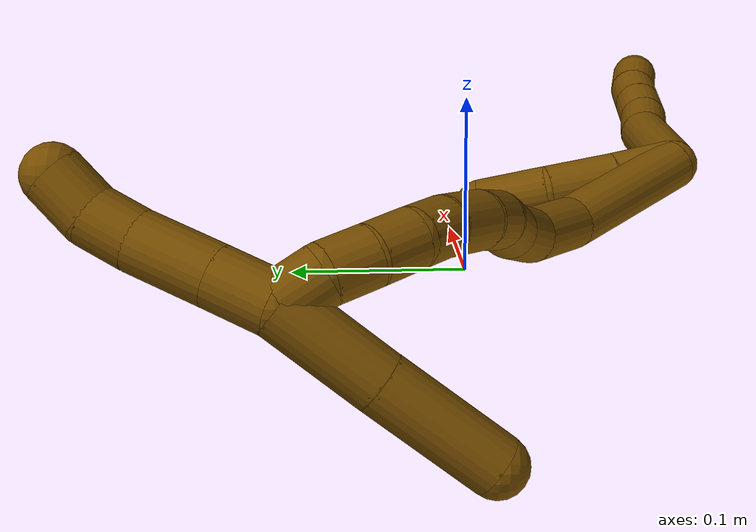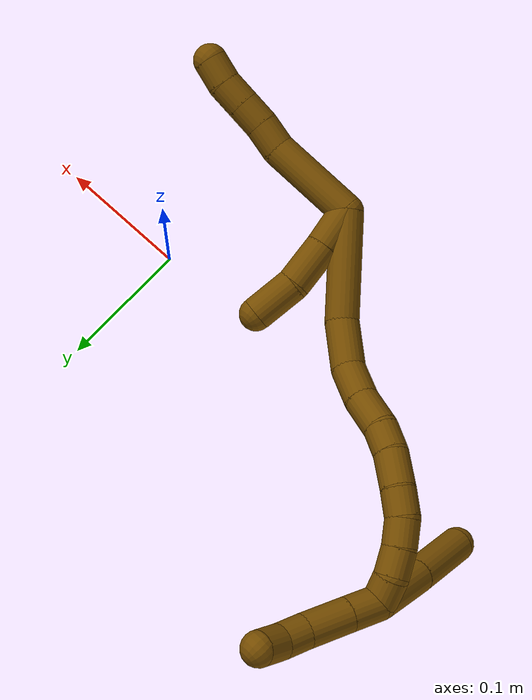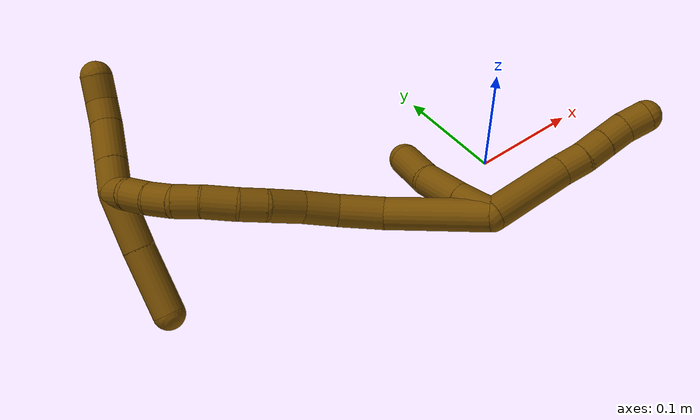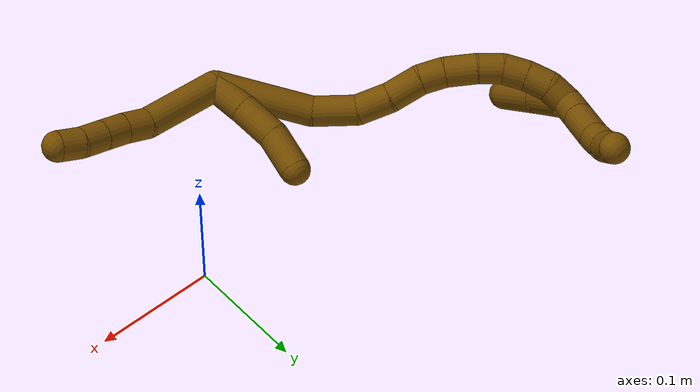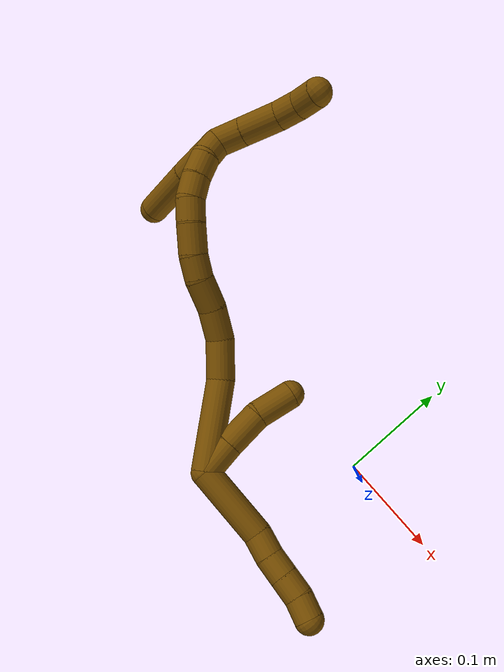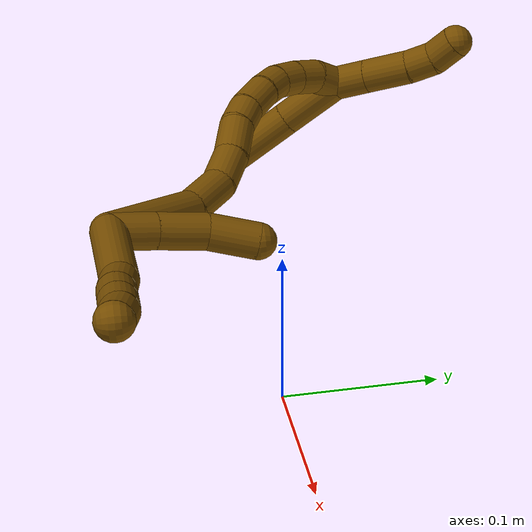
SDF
<sdf version="1.7">
 <world name="default">
  <model name="12">
   <static>0</static>
   <link name="12">
    <collision name="collision-cylinder-e_1_2_8">
     <pose>0.033902 0.003251 0.001426 -1.15732 1.46646 -1.06372</pose>
     <geometry><cylinder><radius>0.0125</radius><length>0.068174</length></cylinder></geometry>
     <surface>
      <friction><ode><mu>1.16</mu><mu2>1.16</mu2><slip1>0</slip1><slip2>0</slip2></ode></friction>
      <contact><ode><kp>1e+06</kp><kd>1</kd><max_vel>0</max_vel><min_depth>0.001</min_depth></ode></contact>
     </surface>
    </collision>
    <visual name="visual-cylinder-e_1_2_8">
     <pose>0.033902 0.003251 0.001426 -1.15732 1.46646 -1.06372</pose>
     <geometry><cylinder><radius>0.0125</radius><length>0.068174</length></cylinder></geometry>
     <material><ambient>0.466667 0.301961 0 1</ambient></material>
    </visual>
    <collision name="collision-cylinder-e_2_8_9">
     <pose>0.078367 0.00539 0.001528 2.44361 1.40849 2.33224</pose>
     <geometry><cylinder><radius>0.0125</radius><length>0.021408</length></cylinder></geometry>
     <surface>
      <friction><ode><mu>1.16</mu><mu2>1.16</mu2><slip1>0</slip1><slip2>0</slip2></ode></friction>
      <contact><ode><kp>1e+06</kp><kd>1</kd><max_vel>0</max_vel><min_depth>0.001</min_depth></ode></contact>
     </surface>
    </collision>
    <visual name="visual-cylinder-e_2_8_9">
     <pose>0.078367 0.00539 0.001528 2.44361 1.40849 2.33224</pose>
     <geometry><cylinder><radius>0.0125</radius><length>0.021408</length></cylinder></geometry>
     <material><ambient>0.466667 0.301961 0 1</ambient></material>
    </visual>
    <collision name="collision-cylinder-e_3_9_10">
     <pose>0.098882 0.003227 0.000271 1.50629 1.46523 1.4013</pose>
     <geometry><cylinder><radius>0.0125</radius><length>0.020014</length></cylinder></geometry>
     <surface>
      <friction><ode><mu>1.16</mu><mu2>1.16</mu2><slip1>0</slip1><slip2>0</slip2></ode></friction>
      <contact><ode><kp>1e+06</kp><kd>1</kd><max_vel>0</max_vel><min_depth>0.001</min_depth></ode></contact>
     </surface>
    </collision>
    <visual name="visual-cylinder-e_3_9_10">
     <pose>0.098882 0.003227 0.000271 1.50629 1.46523 1.4013</pose>
     <geometry><cylinder><radius>0.0125</radius><length>0.020014</length></cylinder></geometry>
     <material><ambient>0.466667 0.301961 0 1</ambient></material>
    </visual>
    <collision name="collision-cylinder-e_4_10_11">
     <pose>0.11897 0.001155 0.000401 1.50933 1.4704 1.40943</pose>
     <geometry><cylinder><radius>0.0125</radius><length>0.020376</length></cylinder></geometry>
     <surface>
      <friction><ode><mu>1.16</mu><mu2>1.16</mu2><slip1>0</slip1><slip2>0</slip2></ode></friction>
      <contact><ode><kp>1e+06</kp><kd>1</kd><max_vel>0</max_vel><min_depth>0.001</min_depth></ode></contact>
     </surface>
    </collision>
    <visual name="visual-cylinder-e_4_10_11">
     <pose>0.11897 0.001155 0.000401 1.50933 1.4704 1.40943</pose>
     <geometry><cylinder><radius>0.0125</radius><length>0.020376</length></cylinder></geometry>
     <material><ambient>0.466667 0.301961 0 1</ambient></material>
    </visual>
    <collision name="collision-cylinder-e_5_11_6">
     <pose>0.138858 -0.001268 -0.001329 2.47743 1.34136 2.32152</pose>
     <geometry><cylinder><radius>0.0125</radius><length>0.020028</length></cylinder></geometry>
     <surface>
      <friction><ode><mu>1.16</mu><mu2>1.16</mu2><slip1>0</slip1><slip2>0</slip2></ode></friction>
      <contact><ode><kp>1e+06</kp><kd>1</kd><max_vel>0</max_vel><min_depth>0.001</min_depth></ode></contact>
     </surface>
    </collision>
    <visual name="visual-cylinder-e_5_11_6">
     <pose>0.138858 -0.001268 -0.001329 2.47743 1.34136 2.32152</pose>
     <geometry><cylinder><radius>0.0125</radius><length>0.020028</length></cylinder></geometry>
     <material><ambient>0.466667 0.301961 0 1</ambient></material>
    </visual>
    <collision name="collision-cylinder-e_1_2_12">
     <pose>-0.003405 0.002839 0.014876 -0.188559 -0.221155 0.020997</pose>
     <geometry><cylinder><radius>0.0125</radius><length>0.031045</length></cylinder></geometry>
     <surface>
      <friction><ode><mu>1.16</mu><mu2>1.16</mu2><slip1>0</slip1><slip2>0</slip2></ode></friction>
      <contact><ode><kp>1e+06</kp><kd>1</kd><max_vel>0</max_vel><min_depth>0.001</min_depth></ode></contact>
     </surface>
    </collision>
    <visual name="visual-cylinder-e_1_2_12">
     <pose>-0.003405 0.002839 0.014876 -0.188559 -0.221155 0.020997</pose>
     <geometry><cylinder><radius>0.0125</radius><length>0.031045</length></cylinder></geometry>
     <material><ambient>0.466667 0.301961 0 1</ambient></material>
    </visual>
    <collision name="collision-cylinder-e_2_12_13">
     <pose>-0.009596 0.008813 0.046559 -0.184459 -0.161529 0.014972</pose>
     <geometry><cylinder><radius>0.0125</radius><length>0.034646</length></cylinder></geometry>
     <surface>
      <friction><ode><mu>1.16</mu><mu2>1.16</mu2><slip1>0</slip1><slip2>0</slip2></ode></friction>
      <contact><ode><kp>1e+06</kp><kd>1</kd><max_vel>0</max_vel><min_depth>0.001</min_depth></ode></contact>
     </surface>
    </collision>
    <visual name="visual-cylinder-e_2_12_13">
     <pose>-0.009596 0.008813 0.046559 -0.184459 -0.161529 0.014972</pose>
     <geometry><cylinder><radius>0.0125</radius><length>0.034646</length></cylinder></geometry>
     <material><ambient>0.466667 0.301961 0 1</ambient></material>
    </visual>
    <collision name="collision-cylinder-e_3_13_5">
     <pose>-0.011036 0.016727 0.079788 -0.283122 0.078508 -0.011194</pose>
     <geometry><cylinder><radius>0.0125</radius><length>0.034309</length></cylinder></geometry>
     <surface>
      <friction><ode><mu>1.16</mu><mu2>1.16</mu2><slip1>0</slip1><slip2>0</slip2></ode></friction>
      <contact><ode><kp>1e+06</kp><kd>1</kd><max_vel>0</max_vel><min_depth>0.001</min_depth></ode></contact>
     </surface>
    </collision>
    <visual name="visual-cylinder-e_3_13_5">
     <pose>-0.011036 0.016727 0.079788 -0.283122 0.078508 -0.011194</pose>
     <geometry><cylinder><radius>0.0125</radius><length>0.034309</length></cylinder></geometry>
     <material><ambient>0.466667 0.301961 0 1</ambient></material>
    </visual>
    <collision name="collision-cylinder-e_1_2_14">
     <pose>-0.028063 0.005483 0.028323 -0.191233 -0.7716 0.077868</pose>
     <geometry><cylinder><radius>0.0125</radius><length>0.080494</length></cylinder></geometry>
     <surface>
      <friction><ode><mu>1.16</mu><mu2>1.16</mu2><slip1>0</slip1><slip2>0</slip2></ode></friction>
      <contact><ode><kp>1e+06</kp><kd>1</kd><max_vel>0</max_vel><min_depth>0.001</min_depth></ode></contact>
     </surface>
    </collision>
    <visual name="visual-cylinder-e_1_2_14">
     <pose>-0.028063 0.005483 0.028323 -0.191233 -0.7716 0.077868</pose>
     <geometry><cylinder><radius>0.0125</radius><length>0.080494</length></cylinder></geometry>
     <material><ambient>0.466667 0.301961 0 1</ambient></material>
    </visual>
    <collision name="collision-cylinder-e_2_14_15">
     <pose>-0.070284 0.008653 0.067705 0.206219 -0.897198 -0.09953</pose>
     <geometry><cylinder><radius>0.0125</radius><length>0.036226</length></cylinder></geometry>
     <surface>
      <friction><ode><mu>1.16</mu><mu2>1.16</mu2><slip1>0</slip1><slip2>0</slip2></ode></friction>
      <contact><ode><kp>1e+06</kp><kd>1</kd><max_vel>0</max_vel><min_depth>0.001</min_depth></ode></contact>
     </surface>
    </collision>
    <visual name="visual-cylinder-e_2_14_15">
     <pose>-0.070284 0.008653 0.067705 0.206219 -0.897198 -0.09953</pose>
     <geometry><cylinder><radius>0.0125</radius><length>0.036226</length></cylinder></geometry>
     <material><ambient>0.466667 0.301961 0 1</ambient></material>
    </visual>
    <collision name="collision-cylinder-e_3_15_16">
     <pose>-0.09585 0.000522 0.084691 0.776126 -0.941673 -0.410311</pose>
     <geometry><cylinder><radius>0.0125</radius><length>0.028223</length></cylinder></geometry>
     <surface>
      <friction><ode><mu>1.16</mu><mu2>1.16</mu2><slip1>0</slip1><slip2>0</slip2></ode></friction>
      <contact><ode><kp>1e+06</kp><kd>1</kd><max_vel>0</max_vel><min_depth>0.001</min_depth></ode></contact>
     </surface>
    </collision>
    <visual name="visual-cylinder-e_3_15_16">
     <pose>-0.09585 0.000522 0.084691 0.776126 -0.941673 -0.410311</pose>
     <geometry><cylinder><radius>0.0125</radius><length>0.028223</length></cylinder></geometry>
     <material><ambient>0.466667 0.301961 0 1</ambient></material>
    </visual>
    <collision name="collision-cylinder-e_4_16_17">
     <pose>-0.118852 -0.0123 0.094491 1.06562 -0.966389 -0.600118</pose>
     <geometry><cylinder><radius>0.0125</radius><length>0.028175</length></cylinder></geometry>
     <surface>
      <friction><ode><mu>1.16</mu><mu2>1.16</mu2><slip1>0</slip1><slip2>0</slip2></ode></friction>
      <contact><ode><kp>1e+06</kp><kd>1</kd><max_vel>0</max_vel><min_depth>0.001</min_depth></ode></contact>
     </surface>
    </collision>
    <visual name="visual-cylinder-e_4_16_17">
     <pose>-0.118852 -0.0123 0.094491 1.06562 -0.966389 -0.600118</pose>
     <geometry><cylinder><radius>0.0125</radius><length>0.028175</length></cylinder></geometry>
     <material><ambient>0.466667 0.301961 0 1</ambient></material>
    </visual>
    <collision name="collision-cylinder-e_5_17_18">
     <pose>-0.138985 -0.022626 0.102813 0.641136 -0.994551 -0.356594</pose>
     <geometry><cylinder><radius>0.0125</radius><length>0.020373</length></cylinder></geometry>
     <surface>
      <friction><ode><mu>1.16</mu><mu2>1.16</mu2><slip1>0</slip1><slip2>0</slip2></ode></friction>
      <contact><ode><kp>1e+06</kp><kd>1</kd><max_vel>0</max_vel><min_depth>0.001</min_depth></ode></contact>
     </surface>
    </collision>
    <visual name="visual-cylinder-e_5_17_18">
     <pose>-0.138985 -0.022626 0.102813 0.641136 -0.994551 -0.356594</pose>
     <geometry><cylinder><radius>0.0125</radius><length>0.020373</length></cylinder></geometry>
     <material><ambient>0.466667 0.301961 0 1</ambient></material>
    </visual>
    <collision name="collision-cylinder-e_6_18_19">
     <pose>-0.157934 -0.028603 0.114765 0.340453 -0.917844 -0.169457</pose>
     <geometry><cylinder><radius>0.0125</radius><length>0.026205</length></cylinder></geometry>
     <surface>
      <friction><ode><mu>1.16</mu><mu2>1.16</mu2><slip1>0</slip1><slip2>0</slip2></ode></friction>
      <contact><ode><kp>1e+06</kp><kd>1</kd><max_vel>0</max_vel><min_depth>0.001</min_depth></ode></contact>
     </surface>
    </collision>
    <visual name="visual-cylinder-e_6_18_19">
     <pose>-0.157934 -0.028603 0.114765 0.340453 -0.917844 -0.169457</pose>
     <geometry><cylinder><radius>0.0125</radius><length>0.026205</length></cylinder></geometry>
     <material><ambient>0.466667 0.301961 0 1</ambient></material>
    </visual>
    <collision name="collision-cylinder-e_7_19_20">
     <pose>-0.176472 -0.031957 0.128289 0.114991 -0.930182 -0.057751</pose>
     <geometry><cylinder><radius>0.0125</radius><length>0.020282</length></cylinder></geometry>
     <surface>
      <friction><ode><mu>1.16</mu><mu2>1.16</mu2><slip1>0</slip1><slip2>0</slip2></ode></friction>
      <contact><ode><kp>1e+06</kp><kd>1</kd><max_vel>0</max_vel><min_depth>0.001</min_depth></ode></contact>
     </surface>
    </collision>
    <visual name="visual-cylinder-e_7_19_20">
     <pose>-0.176472 -0.031957 0.128289 0.114991 -0.930182 -0.057751</pose>
     <geometry><cylinder><radius>0.0125</radius><length>0.020282</length></cylinder></geometry>
     <material><ambient>0.466667 0.301961 0 1</ambient></material>
    </visual>
    <collision name="collision-cylinder-e_8_20_21">
     <pose>-0.190971 -0.031649 0.141959 -0.130436 -0.690146 0.046944</pose>
     <geometry><cylinder><radius>0.0125</radius><length>0.020007</length></cylinder></geometry>
     <surface>
      <friction><ode><mu>1.16</mu><mu2>1.16</mu2><slip1>0</slip1><slip2>0</slip2></ode></friction>
      <contact><ode><kp>1e+06</kp><kd>1</kd><max_vel>0</max_vel><min_depth>0.001</min_depth></ode></contact>
     </surface>
    </collision>
    <visual name="visual-cylinder-e_8_20_21">
     <pose>-0.190971 -0.031649 0.141959 -0.130436 -0.690146 0.046944</pose>
     <geometry><cylinder><radius>0.0125</radius><length>0.020007</length></cylinder></geometry>
     <material><ambient>0.466667 0.301961 0 1</ambient></material>
    </visual>
    <collision name="collision-cylinder-e_9_21_22">
     <pose>-0.202476 -0.028813 0.157996 -0.215038 -0.539125 0.059625</pose>
     <geometry><cylinder><radius>0.0125</radius><length>0.020011</length></cylinder></geometry>
     <surface>
      <friction><ode><mu>1.16</mu><mu2>1.16</mu2><slip1>0</slip1><slip2>0</slip2></ode></friction>
      <contact><ode><kp>1e+06</kp><kd>1</kd><max_vel>0</max_vel><min_depth>0.001</min_depth></ode></contact>
     </surface>
    </collision>
    <visual name="visual-cylinder-e_9_21_22">
     <pose>-0.202476 -0.028813 0.157996 -0.215038 -0.539125 0.059625</pose>
     <geometry><cylinder><radius>0.0125</radius><length>0.020011</length></cylinder></geometry>
     <material><ambient>0.466667 0.301961 0 1</ambient></material>
    </visual>
    <collision name="collision-cylinder-e_10_22_1">
     <pose>-0.211293 -0.022325 0.174436 -0.524312 -0.376777 0.102225</pose>
     <geometry><cylinder><radius>0.0125</radius><length>0.020004</length></cylinder></geometry>
     <surface>
      <friction><ode><mu>1.16</mu><mu2>1.16</mu2><slip1>0</slip1><slip2>0</slip2></ode></friction>
      <contact><ode><kp>1e+06</kp><kd>1</kd><max_vel>0</max_vel><min_depth>0.001</min_depth></ode></contact>
     </surface>
    </collision>
    <visual name="visual-cylinder-e_10_22_1">
     <pose>-0.211293 -0.022325 0.174436 -0.524312 -0.376777 0.102225</pose>
     <geometry><cylinder><radius>0.0125</radius><length>0.020004</length></cylinder></geometry>
     <material><ambient>0.466667 0.301961 0 1</ambient></material>
    </visual>
    <collision name="collision-cylinder-e_1_1_23">
     <pose>-0.218428 -0.004685 0.163568 -2.54013 -0.149477 0.473804</pose>
     <geometry><cylinder><radius>0.0125</radius><length>0.046409</length></cylinder></geometry>
     <surface>
      <friction><ode><mu>1.16</mu><mu2>1.16</mu2><slip1>0</slip1><slip2>0</slip2></ode></friction>
      <contact><ode><kp>1e+06</kp><kd>1</kd><max_vel>0</max_vel><min_depth>0.001</min_depth></ode></contact>
     </surface>
    </collision>
    <visual name="visual-cylinder-e_1_1_23">
     <pose>-0.218428 -0.004685 0.163568 -2.54013 -0.149477 0.473804</pose>
     <geometry><cylinder><radius>0.0125</radius><length>0.046409</length></cylinder></geometry>
     <material><ambient>0.466667 0.301961 0 1</ambient></material>
    </visual>
    <collision name="collision-cylinder-e_2_23_4">
     <pose>-0.225007 0.023231 0.122621 -2.54586 -0.116802 0.376388</pose>
     <geometry><cylinder><radius>0.0125</radius><length>0.053591</length></cylinder></geometry>
     <surface>
      <friction><ode><mu>1.16</mu><mu2>1.16</mu2><slip1>0</slip1><slip2>0</slip2></ode></friction>
      <contact><ode><kp>1e+06</kp><kd>1</kd><max_vel>0</max_vel><min_depth>0.001</min_depth></ode></contact>
     </surface>
    </collision>
    <visual name="visual-cylinder-e_2_23_4">
     <pose>-0.225007 0.023231 0.122621 -2.54586 -0.116802 0.376388</pose>
     <geometry><cylinder><radius>0.0125</radius><length>0.053591</length></cylinder></geometry>
     <material><ambient>0.466667 0.301961 0 1</ambient></material>
    </visual>
    <collision name="collision-cylinder-e_1_1_24">
     <pose>-0.210208 -0.020692 0.194001 0.256736 0.380745 0.049738</pose>
     <geometry><cylinder><radius>0.0125</radius><length>0.025644</length></cylinder></geometry>
     <surface>
      <friction><ode><mu>1.16</mu><mu2>1.16</mu2><slip1>0</slip1><slip2>0</slip2></ode></friction>
      <contact><ode><kp>1e+06</kp><kd>1</kd><max_vel>0</max_vel><min_depth>0.001</min_depth></ode></contact>
     </surface>
    </collision>
    <visual name="visual-cylinder-e_1_1_24">
     <pose>-0.210208 -0.020692 0.194001 0.256736 0.380745 0.049738</pose>
     <geometry><cylinder><radius>0.0125</radius><length>0.025644</length></cylinder></geometry>
     <material><ambient>0.466667 0.301961 0 1</ambient></material>
    </visual>
    <collision name="collision-cylinder-e_2_24_25">
     <pose>-0.199252 -0.027595 0.220661 0.25079 0.377025 0.048088</pose>
     <geometry><cylinder><radius>0.0125</radius><length>0.033634</length></cylinder></geometry>
     <surface>
      <friction><ode><mu>1.16</mu><mu2>1.16</mu2><slip1>0</slip1><slip2>0</slip2></ode></friction>
      <contact><ode><kp>1e+06</kp><kd>1</kd><max_vel>0</max_vel><min_depth>0.001</min_depth></ode></contact>
     </surface>
    </collision>
    <visual name="visual-cylinder-e_2_24_25">
     <pose>-0.199252 -0.027595 0.220661 0.25079 0.377025 0.048088</pose>
     <geometry><cylinder><radius>0.0125</radius><length>0.033634</length></cylinder></geometry>
     <material><ambient>0.466667 0.301961 0 1</ambient></material>
    </visual>
    <collision name="collision-cylinder-e_3_25_26">
     <pose>-0.189799 -0.034884 0.244657 0.367748 0.331231 0.06215</pose>
     <geometry><cylinder><radius>0.0125</radius><length>0.020056</length></cylinder></geometry>
     <surface>
      <friction><ode><mu>1.16</mu><mu2>1.16</mu2><slip1>0</slip1><slip2>0</slip2></ode></friction>
      <contact><ode><kp>1e+06</kp><kd>1</kd><max_vel>0</max_vel><min_depth>0.001</min_depth></ode></contact>
     </surface>
    </collision>
    <visual name="visual-cylinder-e_3_25_26">
     <pose>-0.189799 -0.034884 0.244657 0.367748 0.331231 0.06215</pose>
     <geometry><cylinder><radius>0.0125</radius><length>0.020056</length></cylinder></geometry>
     <material><ambient>0.466667 0.301961 0 1</ambient></material>
    </visual>
    <collision name="collision-cylinder-e_4_26_3">
     <pose>-0.18313 -0.044617 0.260933 0.705344 0.336168 0.124746</pose>
     <geometry><cylinder><radius>0.0125</radius><length>0.020666</length></cylinder></geometry>
     <surface>
      <friction><ode><mu>1.16</mu><mu2>1.16</mu2><slip1>0</slip1><slip2>0</slip2></ode></friction>
      <contact><ode><kp>1e+06</kp><kd>1</kd><max_vel>0</max_vel><min_depth>0.001</min_depth></ode></contact>
     </surface>
    </collision>
    <visual name="visual-cylinder-e_4_26_3">
     <pose>-0.18313 -0.044617 0.260933 0.705344 0.336168 0.124746</pose>
     <geometry><cylinder><radius>0.0125</radius><length>0.020666</length></cylinder></geometry>
     <material><ambient>0.466667 0.301961 0 1</ambient></material>
    </visual>
    <collision name="collision-sphere-3">
     <pose>-0.179721 -0.050941 0.26836 0 -0 0</pose>
     <geometry><sphere><radius>0.0125</radius></sphere></geometry>
     <surface>
      <friction><ode><mu>1.16</mu><mu2>1.16</mu2><slip1>0</slip1><slip2>0</slip2></ode></friction>
      <contact><ode><kp>1e+06</kp><kd>1</kd><max_vel>0</max_vel><min_depth>0.001</min_depth></ode></contact>
     </surface>
    </collision>
    <visual name="visual-sphere-3">
     <pose>-0.179721 -0.050941 0.26836 0 -0 0</pose>
     <geometry><sphere><radius>0.0125</radius></sphere></geometry>
     <material><ambient>0.466667 0.301961 0 1</ambient></material>
    </visual>
    <collision name="collision-sphere-26">
     <pose>-0.186538 -0.038294 0.253506 0 -0 0</pose>
     <geometry><sphere><radius>0.0125</radius></sphere></geometry>
     <surface>
      <friction><ode><mu>1.16</mu><mu2>1.16</mu2><slip1>0</slip1><slip2>0</slip2></ode></friction>
      <contact><ode><kp>1e+06</kp><kd>1</kd><max_vel>0</max_vel><min_depth>0.001</min_depth></ode></contact>
     </surface>
    </collision>
    <visual name="visual-sphere-26">
     <pose>-0.186538 -0.038294 0.253506 0 -0 0</pose>
     <geometry><sphere><radius>0.0125</radius></sphere></geometry>
     <material><ambient>0.466667 0.301961 0 1</ambient></material>
    </visual>
    <collision name="collision-sphere-25">
     <pose>-0.19306 -0.031475 0.235808 0 -0 0</pose>
     <geometry><sphere><radius>0.0125</radius></sphere></geometry>
     <surface>
      <friction><ode><mu>1.16</mu><mu2>1.16</mu2><slip1>0</slip1><slip2>0</slip2></ode></friction>
      <contact><ode><kp>1e+06</kp><kd>1</kd><max_vel>0</max_vel><min_depth>0.001</min_depth></ode></contact>
     </surface>
    </collision>
    <visual name="visual-sphere-25">
     <pose>-0.19306 -0.031475 0.235808 0 -0 0</pose>
     <geometry><sphere><radius>0.0125</radius></sphere></geometry>
     <material><ambient>0.466667 0.301961 0 1</ambient></material>
    </visual>
    <collision name="collision-sphere-24">
     <pose>-0.205443 -0.023714 0.205514 0 -0 0</pose>
     <geometry><sphere><radius>0.0125</radius></sphere></geometry>
     <surface>
      <friction><ode><mu>1.16</mu><mu2>1.16</mu2><slip1>0</slip1><slip2>0</slip2></ode></friction>
      <contact><ode><kp>1e+06</kp><kd>1</kd><max_vel>0</max_vel><min_depth>0.001</min_depth></ode></contact>
     </surface>
    </collision>
    <visual name="visual-sphere-24">
     <pose>-0.205443 -0.023714 0.205514 0 -0 0</pose>
     <geometry><sphere><radius>0.0125</radius></sphere></geometry>
     <material><ambient>0.466667 0.301961 0 1</ambient></material>
    </visual>
    <collision name="collision-sphere-4">
     <pose>-0.228129 0.038164 0.100592 0 -0 0</pose>
     <geometry><sphere><radius>0.0125</radius></sphere></geometry>
     <surface>
      <friction><ode><mu>1.16</mu><mu2>1.16</mu2><slip1>0</slip1><slip2>0</slip2></ode></friction>
      <contact><ode><kp>1e+06</kp><kd>1</kd><max_vel>0</max_vel><min_depth>0.001</min_depth></ode></contact>
     </surface>
    </collision>
    <visual name="visual-sphere-4">
     <pose>-0.228129 0.038164 0.100592 0 -0 0</pose>
     <geometry><sphere><radius>0.0125</radius></sphere></geometry>
     <material><ambient>0.466667 0.301961 0 1</ambient></material>
    </visual>
    <collision name="collision-sphere-23">
     <pose>-0.221884 0.008298 0.144649 0 -0 0</pose>
     <geometry><sphere><radius>0.0125</radius></sphere></geometry>
     <surface>
      <friction><ode><mu>1.16</mu><mu2>1.16</mu2><slip1>0</slip1><slip2>0</slip2></ode></friction>
      <contact><ode><kp>1e+06</kp><kd>1</kd><max_vel>0</max_vel><min_depth>0.001</min_depth></ode></contact>
     </surface>
    </collision>
    <visual name="visual-sphere-23">
     <pose>-0.221884 0.008298 0.144649 0 -0 0</pose>
     <geometry><sphere><radius>0.0125</radius></sphere></geometry>
     <material><ambient>0.466667 0.301961 0 1</ambient></material>
    </visual>
    <collision name="collision-sphere-1">
     <pose>-0.214973 -0.017669 0.182487 0 -0 0</pose>
     <geometry><sphere><radius>0.0125</radius></sphere></geometry>
     <surface>
      <friction><ode><mu>1.16</mu><mu2>1.16</mu2><slip1>0</slip1><slip2>0</slip2></ode></friction>
      <contact><ode><kp>1e+06</kp><kd>1</kd><max_vel>0</max_vel><min_depth>0.001</min_depth></ode></contact>
     </surface>
    </collision>
    <visual name="visual-sphere-1">
     <pose>-0.214973 -0.017669 0.182487 0 -0 0</pose>
     <geometry><sphere><radius>0.0125</radius></sphere></geometry>
     <material><ambient>0.466667 0.301961 0 1</ambient></material>
    </visual>
    <collision name="collision-sphere-22">
     <pose>-0.207613 -0.026981 0.166385 0 -0 0</pose>
     <geometry><sphere><radius>0.0125</radius></sphere></geometry>
     <surface>
      <friction><ode><mu>1.16</mu><mu2>1.16</mu2><slip1>0</slip1><slip2>0</slip2></ode></friction>
      <contact><ode><kp>1e+06</kp><kd>1</kd><max_vel>0</max_vel><min_depth>0.001</min_depth></ode></contact>
     </surface>
    </collision>
    <visual name="visual-sphere-22">
     <pose>-0.207613 -0.026981 0.166385 0 -0 0</pose>
     <geometry><sphere><radius>0.0125</radius></sphere></geometry>
     <material><ambient>0.466667 0.301961 0 1</ambient></material>
    </visual>
    <collision name="collision-sphere-21">
     <pose>-0.197339 -0.030646 0.149608 0 -0 0</pose>
     <geometry><sphere><radius>0.0125</radius></sphere></geometry>
     <surface>
      <friction><ode><mu>1.16</mu><mu2>1.16</mu2><slip1>0</slip1><slip2>0</slip2></ode></friction>
      <contact><ode><kp>1e+06</kp><kd>1</kd><max_vel>0</max_vel><min_depth>0.001</min_depth></ode></contact>
     </surface>
    </collision>
    <visual name="visual-sphere-21">
     <pose>-0.197339 -0.030646 0.149608 0 -0 0</pose>
     <geometry><sphere><radius>0.0125</radius></sphere></geometry>
     <material><ambient>0.466667 0.301961 0 1</ambient></material>
    </visual>
    <collision name="collision-sphere-6">
     <pose>0.148609 -0.002672 -0.003123 0 -0 0</pose>
     <geometry><sphere><radius>0.0125</radius></sphere></geometry>
     <surface>
      <friction><ode><mu>1.16</mu><mu2>1.16</mu2><slip1>0</slip1><slip2>0</slip2></ode></friction>
      <contact><ode><kp>1e+06</kp><kd>1</kd><max_vel>0</max_vel><min_depth>0.001</min_depth></ode></contact>
     </surface>
    </collision>
    <visual name="visual-sphere-6">
     <pose>0.148609 -0.002672 -0.003123 0 -0 0</pose>
     <geometry><sphere><radius>0.0125</radius></sphere></geometry>
     <material><ambient>0.466667 0.301961 0 1</ambient></material>
    </visual>
    <collision name="collision-sphere-11">
     <pose>0.129106 0.000136 0.000464 0 -0 0</pose>
     <geometry><sphere><radius>0.0125</radius></sphere></geometry>
     <surface>
      <friction><ode><mu>1.16</mu><mu2>1.16</mu2><slip1>0</slip1><slip2>0</slip2></ode></friction>
      <contact><ode><kp>1e+06</kp><kd>1</kd><max_vel>0</max_vel><min_depth>0.001</min_depth></ode></contact>
     </surface>
    </collision>
    <visual name="visual-sphere-11">
     <pose>0.129106 0.000136 0.000464 0 -0 0</pose>
     <geometry><sphere><radius>0.0125</radius></sphere></geometry>
     <material><ambient>0.466667 0.301961 0 1</ambient></material>
    </visual>
    <collision name="collision-sphere-10">
     <pose>0.108833 0.002174 0.000339 0 -0 0</pose>
     <geometry><sphere><radius>0.0125</radius></sphere></geometry>
     <surface>
      <friction><ode><mu>1.16</mu><mu2>1.16</mu2><slip1>0</slip1><slip2>0</slip2></ode></friction>
      <contact><ode><kp>1e+06</kp><kd>1</kd><max_vel>0</max_vel><min_depth>0.001</min_depth></ode></contact>
     </surface>
    </collision>
    <visual name="visual-sphere-10">
     <pose>0.108833 0.002174 0.000339 0 -0 0</pose>
     <geometry><sphere><radius>0.0125</radius></sphere></geometry>
     <material><ambient>0.466667 0.301961 0 1</ambient></material>
    </visual>
    <collision name="collision-sphere-9">
     <pose>0.08893 0.004279 0.000203 0 -0 0</pose>
     <geometry><sphere><radius>0.0125</radius></sphere></geometry>
     <surface>
      <friction><ode><mu>1.16</mu><mu2>1.16</mu2><slip1>0</slip1><slip2>0</slip2></ode></friction>
      <contact><ode><kp>1e+06</kp><kd>1</kd><max_vel>0</max_vel><min_depth>0.001</min_depth></ode></contact>
     </surface>
    </collision>
    <visual name="visual-sphere-9">
     <pose>0.08893 0.004279 0.000203 0 -0 0</pose>
     <geometry><sphere><radius>0.0125</radius></sphere></geometry>
     <material><ambient>0.466667 0.301961 0 1</ambient></material>
    </visual>
    <collision name="collision-sphere-2">
     <geometry><sphere><radius>0.0125</radius></sphere></geometry>
     <surface>
      <friction><ode><mu>1.16</mu><mu2>1.16</mu2><slip1>0</slip1><slip2>0</slip2></ode></friction>
      <contact><ode><kp>1e+06</kp><kd>1</kd><max_vel>0</max_vel><min_depth>0.001</min_depth></ode></contact>
     </surface>
    </collision>
    <visual name="visual-sphere-2">
     <geometry><sphere><radius>0.0125</radius></sphere></geometry>
     <material><ambient>0.466667 0.301961 0 1</ambient></material>
    </visual>
    <collision name="collision-sphere-19">
     <pose>-0.168341 -0.031261 0.122268 0 -0 0</pose>
     <geometry><sphere><radius>0.0125</radius></sphere></geometry>
     <surface>
      <friction><ode><mu>1.16</mu><mu2>1.16</mu2><slip1>0</slip1><slip2>0</slip2></ode></friction>
      <contact><ode><kp>1e+06</kp><kd>1</kd><max_vel>0</max_vel><min_depth>0.001</min_depth></ode></contact>
     </surface>
    </collision>
    <visual name="visual-sphere-19">
     <pose>-0.168341 -0.031261 0.122268 0 -0 0</pose>
     <geometry><sphere><radius>0.0125</radius></sphere></geometry>
     <material><ambient>0.466667 0.301961 0 1</ambient></material>
    </visual>
    <collision name="collision-sphere-8">
     <pose>0.067804 0.006502 0.002853 0 -0 0</pose>
     <geometry><sphere><radius>0.0125</radius></sphere></geometry>
     <surface>
      <friction><ode><mu>1.16</mu><mu2>1.16</mu2><slip1>0</slip1><slip2>0</slip2></ode></friction>
      <contact><ode><kp>1e+06</kp><kd>1</kd><max_vel>0</max_vel><min_depth>0.001</min_depth></ode></contact>
     </surface>
    </collision>
    <visual name="visual-sphere-8">
     <pose>0.067804 0.006502 0.002853 0 -0 0</pose>
     <geometry><sphere><radius>0.0125</radius></sphere></geometry>
     <material><ambient>0.466667 0.301961 0 1</ambient></material>
    </visual>
    <collision name="collision-sphere-12">
     <pose>-0.00681 0.005677 0.029752 0 -0 0</pose>
     <geometry><sphere><radius>0.0125</radius></sphere></geometry>
     <surface>
      <friction><ode><mu>1.16</mu><mu2>1.16</mu2><slip1>0</slip1><slip2>0</slip2></ode></friction>
      <contact><ode><kp>1e+06</kp><kd>1</kd><max_vel>0</max_vel><min_depth>0.001</min_depth></ode></contact>
     </surface>
    </collision>
    <visual name="visual-sphere-12">
     <pose>-0.00681 0.005677 0.029752 0 -0 0</pose>
     <geometry><sphere><radius>0.0125</radius></sphere></geometry>
     <material><ambient>0.466667 0.301961 0 1</ambient></material>
    </visual>
    <collision name="collision-sphere-13">
     <pose>-0.012382 0.011949 0.063366 0 -0 0</pose>
     <geometry><sphere><radius>0.0125</radius></sphere></geometry>
     <surface>
      <friction><ode><mu>1.16</mu><mu2>1.16</mu2><slip1>0</slip1><slip2>0</slip2></ode></friction>
      <contact><ode><kp>1e+06</kp><kd>1</kd><max_vel>0</max_vel><min_depth>0.001</min_depth></ode></contact>
     </surface>
    </collision>
    <visual name="visual-sphere-13">
     <pose>-0.012382 0.011949 0.063366 0 -0 0</pose>
     <geometry><sphere><radius>0.0125</radius></sphere></geometry>
     <material><ambient>0.466667 0.301961 0 1</ambient></material>
    </visual>
    <collision name="collision-sphere-5">
     <pose>-0.009691 0.021504 0.096209 0 -0 0</pose>
     <geometry><sphere><radius>0.0125</radius></sphere></geometry>
     <surface>
      <friction><ode><mu>1.16</mu><mu2>1.16</mu2><slip1>0</slip1><slip2>0</slip2></ode></friction>
      <contact><ode><kp>1e+06</kp><kd>1</kd><max_vel>0</max_vel><min_depth>0.001</min_depth></ode></contact>
     </surface>
    </collision>
    <visual name="visual-sphere-5">
     <pose>-0.009691 0.021504 0.096209 0 -0 0</pose>
     <geometry><sphere><radius>0.0125</radius></sphere></geometry>
     <material><ambient>0.466667 0.301961 0 1</ambient></material>
    </visual>
    <collision name="collision-sphere-14">
     <pose>-0.056127 0.010967 0.056646 0 -0 0</pose>
     <geometry><sphere><radius>0.0125</radius></sphere></geometry>
     <surface>
      <friction><ode><mu>1.16</mu><mu2>1.16</mu2><slip1>0</slip1><slip2>0</slip2></ode></friction>
      <contact><ode><kp>1e+06</kp><kd>1</kd><max_vel>0</max_vel><min_depth>0.001</min_depth></ode></contact>
     </surface>
    </collision>
    <visual name="visual-sphere-14">
     <pose>-0.056127 0.010967 0.056646 0 -0 0</pose>
     <geometry><sphere><radius>0.0125</radius></sphere></geometry>
     <material><ambient>0.466667 0.301961 0 1</ambient></material>
    </visual>
    <collision name="collision-sphere-15">
     <pose>-0.08444 0.006339 0.078765 0 -0 0</pose>
     <geometry><sphere><radius>0.0125</radius></sphere></geometry>
     <surface>
      <friction><ode><mu>1.16</mu><mu2>1.16</mu2><slip1>0</slip1><slip2>0</slip2></ode></friction>
      <contact><ode><kp>1e+06</kp><kd>1</kd><max_vel>0</max_vel><min_depth>0.001</min_depth></ode></contact>
     </surface>
    </collision>
    <visual name="visual-sphere-15">
     <pose>-0.08444 0.006339 0.078765 0 -0 0</pose>
     <geometry><sphere><radius>0.0125</radius></sphere></geometry>
     <material><ambient>0.466667 0.301961 0 1</ambient></material>
    </visual>
    <collision name="collision-sphere-16">
     <pose>-0.10726 -0.005295 0.090616 0 -0 0</pose>
     <geometry><sphere><radius>0.0125</radius></sphere></geometry>
     <surface>
      <friction><ode><mu>1.16</mu><mu2>1.16</mu2><slip1>0</slip1><slip2>0</slip2></ode></friction>
      <contact><ode><kp>1e+06</kp><kd>1</kd><max_vel>0</max_vel><min_depth>0.001</min_depth></ode></contact>
     </surface>
    </collision>
    <visual name="visual-sphere-16">
     <pose>-0.10726 -0.005295 0.090616 0 -0 0</pose>
     <geometry><sphere><radius>0.0125</radius></sphere></geometry>
     <material><ambient>0.466667 0.301961 0 1</ambient></material>
    </visual>
    <collision name="collision-sphere-17">
     <pose>-0.130444 -0.019306 0.098365 0 -0 0</pose>
     <geometry><sphere><radius>0.0125</radius></sphere></geometry>
     <surface>
      <friction><ode><mu>1.16</mu><mu2>1.16</mu2><slip1>0</slip1><slip2>0</slip2></ode></friction>
      <contact><ode><kp>1e+06</kp><kd>1</kd><max_vel>0</max_vel><min_depth>0.001</min_depth></ode></contact>
     </surface>
    </collision>
    <visual name="visual-sphere-17">
     <pose>-0.130444 -0.019306 0.098365 0 -0 0</pose>
     <geometry><sphere><radius>0.0125</radius></sphere></geometry>
     <material><ambient>0.466667 0.301961 0 1</ambient></material>
    </visual>
    <collision name="collision-sphere-18">
     <pose>-0.147527 -0.025945 0.107262 0 -0 0</pose>
     <geometry><sphere><radius>0.0125</radius></sphere></geometry>
     <surface>
      <friction><ode><mu>1.16</mu><mu2>1.16</mu2><slip1>0</slip1><slip2>0</slip2></ode></friction>
      <contact><ode><kp>1e+06</kp><kd>1</kd><max_vel>0</max_vel><min_depth>0.001</min_depth></ode></contact>
     </surface>
    </collision>
    <visual name="visual-sphere-18">
     <pose>-0.147527 -0.025945 0.107262 0 -0 0</pose>
     <geometry><sphere><radius>0.0125</radius></sphere></geometry>
     <material><ambient>0.466667 0.301961 0 1</ambient></material>
    </visual>
    <collision name="collision-sphere-20">
     <pose>-0.184602 -0.032652 0.134311 0 -0 0</pose>
     <geometry><sphere><radius>0.0125</radius></sphere></geometry>
     <surface>
      <friction><ode><mu>1.16</mu><mu2>1.16</mu2><slip1>0</slip1><slip2>0</slip2></ode></friction>
      <contact><ode><kp>1e+06</kp><kd>1</kd><max_vel>0</max_vel><min_depth>0.001</min_depth></ode></contact>
     </surface>
    </collision>
    <visual name="visual-sphere-20">
     <pose>-0.184602 -0.032652 0.134311 0 -0 0</pose>
     <geometry><sphere><radius>0.0125</radius></sphere></geometry>
     <material><ambient>0.466667 0.301961 0 1</ambient></material>
    </visual>
    <inertial>
     <pose>-0.086707 -0.005037 0.091691 0 -0 0</pose>
     <mass>0.75</mass>
     <inertia><ixx>9.7e-05</ixx><ixy>0</ixy><ixz>0</ixz><iyy>0.000116</iyy><iyz>0</iyz><izz>1.7e-05</izz></inertia>
    </inertial>
   </link>
   <pose>-0.091604 -0.09485 0.07895 -1.52993 -0.149967 -0.059914</pose>
  </model>
 </world>
</sdf>
